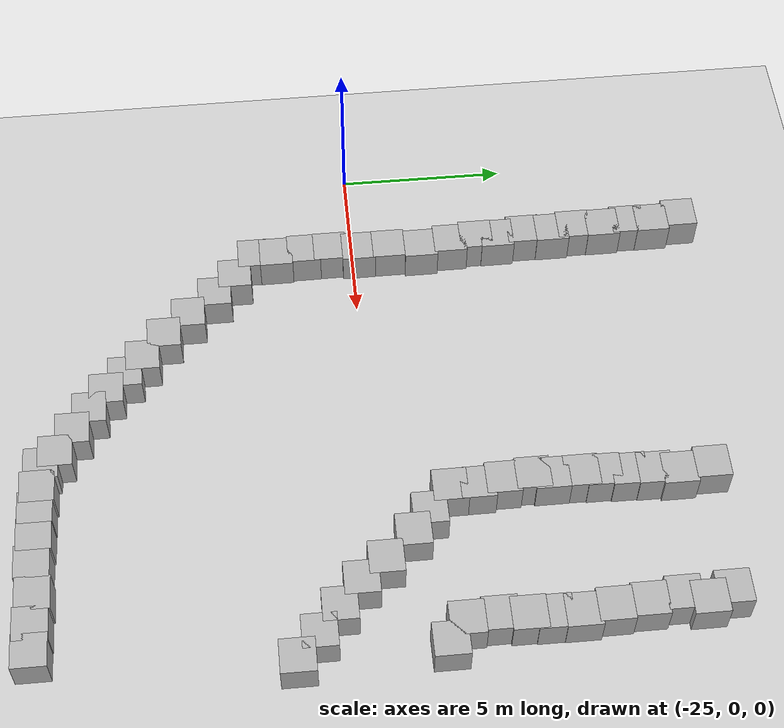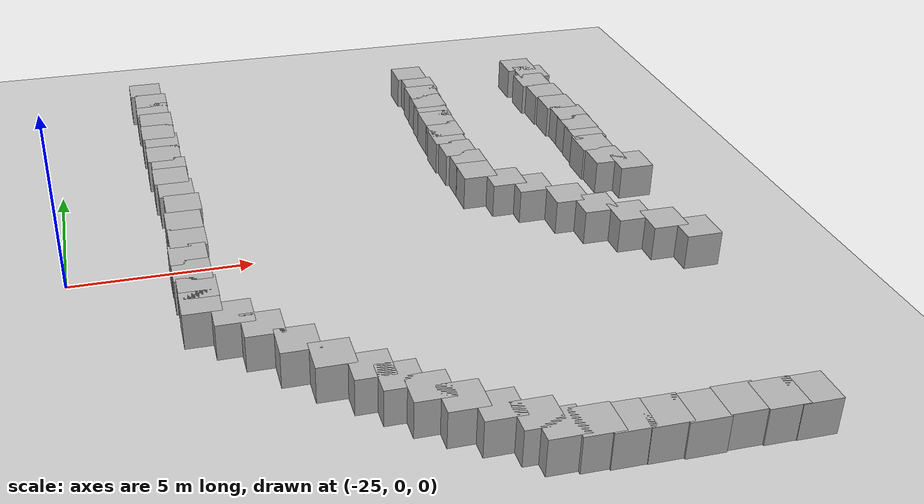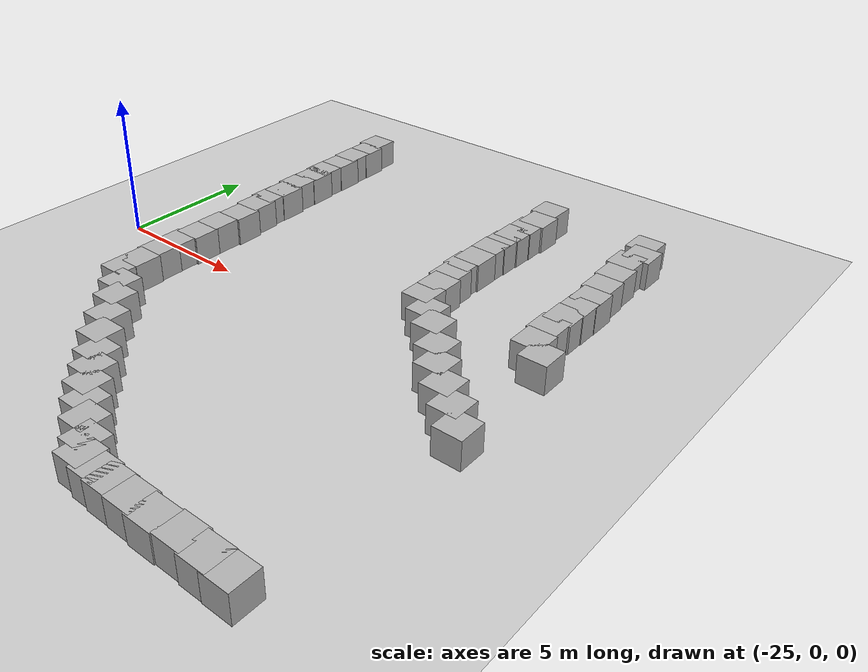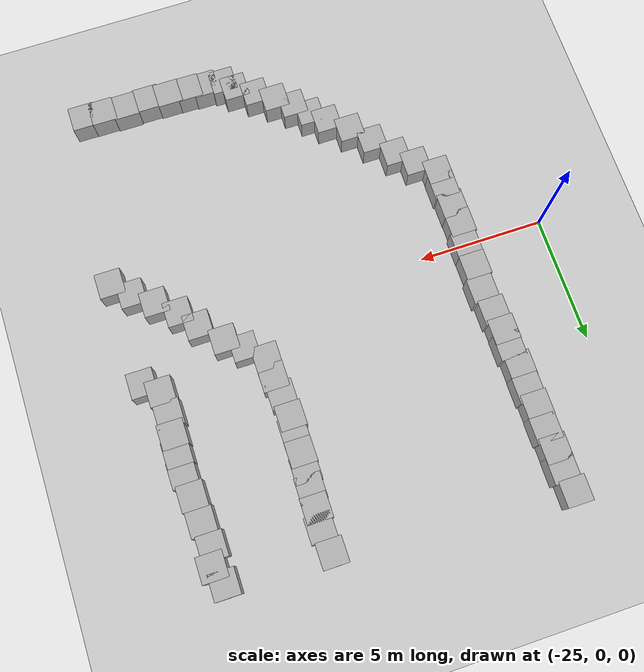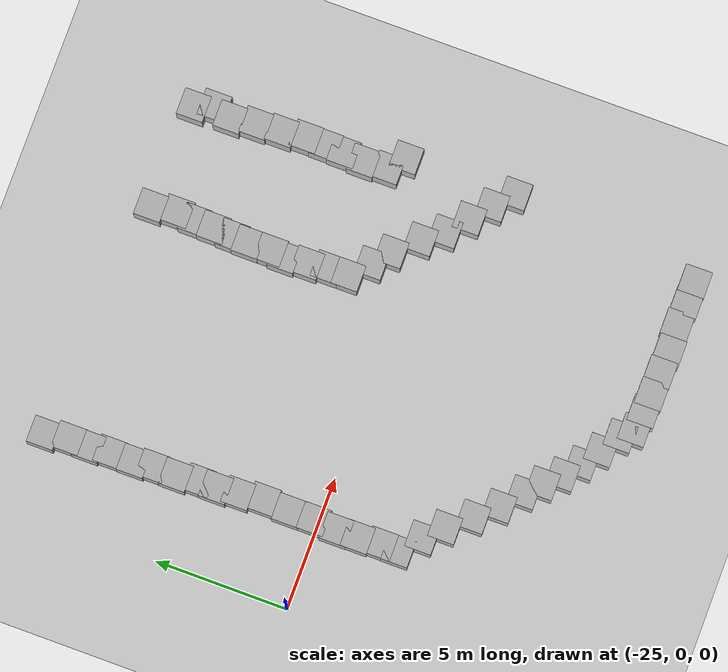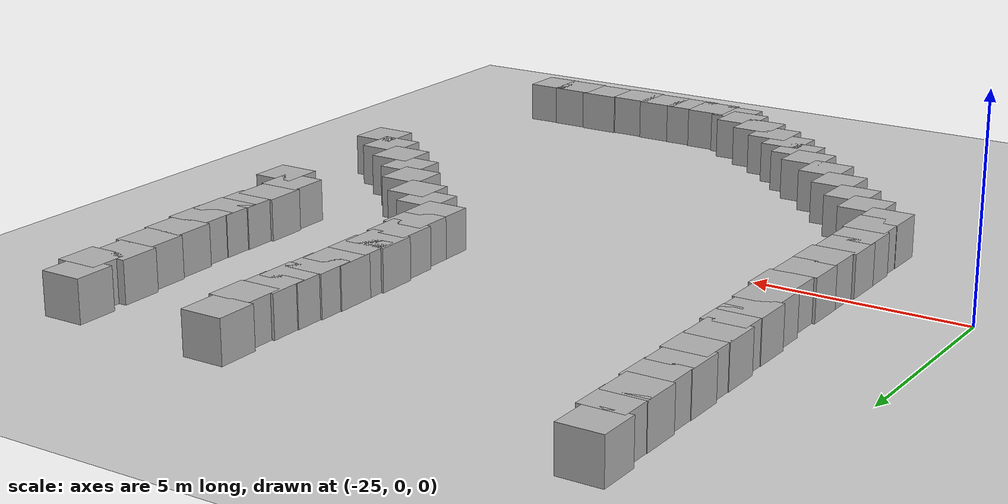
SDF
<sdf version="1.10">
 <world name="empty">
  <model name="ground_plane">
   <static>true</static>
   <link name="link">
    <collision name="collision">
     <geometry><plane><normal>0 0 1</normal><size>100 100</size></plane></geometry>
    </collision>
    <visual name="visual">
     <geometry><plane><normal>0 0 1</normal><size>100 100</size></plane></geometry>
     <material>
      <ambient>0.800000012 0.800000012 0.800000012 1</ambient>
      <diffuse>0.800000012 0.800000012 0.800000012 1</diffuse>
      <specular>0.800000012 0.800000012 0.800000012 1</specular>
     </material>
    </visual>
    <inertial>
     <mass>1</mass>
     <inertia><ixx>1</ixx><ixy>0</ixy><ixz>0</ixz><iyy>1</iyy><iyz>0</iyz><izz>1</izz></inertia>
    </inertial>
   </link>
  </model>
  <model name="box_16">
   <pose>-8.3134256486186651 1.5560085388121672 0.5 0 0 0</pose>
   <link name="box_link">
    <inertial>
     <inertia><ixx>0.16666</ixx><ixy>0</ixy><ixz>0</ixz><iyy>0.16666</iyy><iyz>0</iyz><izz>0.16666</izz></inertia>
     <mass>1</mass>
    </inertial>
    <collision name="box_collision"><geometry><box><size>1 1 1</size></box></geometry></collision>
    <visual name="box_visual">
     <geometry><box><size>1 1 1</size></box></geometry>
     <material>
      <ambient>0.300000012 0.300000012 0.300000012 1</ambient>
      <diffuse>0.699999988 0.699999988 0.699999988 1</diffuse>
      <specular>1 1 1 1</specular>
     </material>
    </visual>
   </link>
   <static>false</static>
  </model>
  <model name="box_17">
   <pose>-8.8900060211585394 2.0571078484096716 0.5 0 0 0</pose>
   <link name="box_link">
    <inertial>
     <inertia><ixx>0.16666</ixx><ixy>0</ixy><ixz>0</ixz><iyy>0.16666</iyy><iyz>0</iyz><izz>0.16666</izz></inertia>
     <mass>1</mass>
    </inertial>
    <collision name="box_collision"><geometry><box><size>1 1 1</size></box></geometry></collision>
    <visual name="box_visual">
     <geometry><box><size>1 1 1</size></box></geometry>
     <material>
      <ambient>0.300000012 0.300000012 0.300000012 1</ambient>
      <diffuse>0.699999988 0.699999988 0.699999988 1</diffuse>
      <specular>1 1 1 1</specular>
     </material>
    </visual>
   </link>
   <static>false</static>
  </model>
  <model name="box_18">
   <pose>-8.9467301686917917 2.964929724458182 0.5 0 0 0</pose>
   <link name="box_link">
    <inertial>
     <inertia><ixx>0.16666</ixx><ixy>0</ixy><ixz>0</ixz><iyy>0.16666</iyy><iyz>0</iyz><izz>0.16666</izz></inertia>
     <mass>1</mass>
    </inertial>
    <collision name="box_collision"><geometry><box><size>1 1 1</size></box></geometry></collision>
    <visual name="box_visual">
     <geometry><box><size>1 1 1</size></box></geometry>
     <material>
      <ambient>0.300000012 0.300000012 0.300000012 1</ambient>
      <diffuse>0.699999988 0.699999988 0.699999988 1</diffuse>
      <specular>1 1 1 1</specular>
     </material>
    </visual>
   </link>
   <static>false</static>
  </model>
  <model name="box_7_19">
   <pose>-8.8825054762130602 3.7403488629637112 0.5 0 0 0</pose>
   <link name="box_link">
    <inertial>
     <inertia><ixx>0.16666</ixx><ixy>0</ixy><ixz>0</ixz><iyy>0.16666</iyy><iyz>0</iyz><izz>0.16666</izz></inertia>
     <mass>1</mass>
    </inertial>
    <collision name="box_collision"><geometry><box><size>1 1 1</size></box></geometry></collision>
    <visual name="box_visual">
     <geometry><box><size>1 1 1</size></box></geometry>
     <material>
      <ambient>0.300000012 0.300000012 0.300000012 1</ambient>
      <diffuse>0.699999988 0.699999988 0.699999988 1</diffuse>
      <specular>1 1 1 1</specular>
     </material>
    </visual>
   </link>
   <static>false</static>
  </model>
  <model name="box_7_20">
   <pose>-8.8563270385400727 4.4408290193656885 0.5 0 0 0</pose>
   <link name="box_link">
    <inertial>
     <inertia><ixx>0.16666</ixx><ixy>0</ixy><ixz>0</ixz><iyy>0.16666</iyy><iyz>0</iyz><izz>0.16666</izz></inertia>
     <mass>1</mass>
    </inertial>
    <collision name="box_collision"><geometry><box><size>1 1 1</size></box></geometry></collision>
    <visual name="box_visual">
     <geometry><box><size>1 1 1</size></box></geometry>
     <material>
      <ambient>0.300000012 0.300000012 0.300000012 1</ambient>
      <diffuse>0.699999988 0.699999988 0.699999988 1</diffuse>
      <specular>1 1 1 1</specular>
     </material>
    </visual>
   </link>
   <static>false</static>
  </model>
  <model name="box_7_21">
   <pose>-8.8393992152168064 5.2070650359532245 0.5 0 0 0</pose>
   <link name="box_link">
    <inertial>
     <inertia><ixx>0.16666</ixx><ixy>0</ixy><ixz>0</ixz><iyy>0.16666</iyy><iyz>0</iyz><izz>0.16666</izz></inertia>
     <mass>1</mass>
    </inertial>
    <collision name="box_collision"><geometry><box><size>1 1 1</size></box></geometry></collision>
    <visual name="box_visual">
     <geometry><box><size>1 1 1</size></box></geometry>
     <material>
      <ambient>0.300000012 0.300000012 0.300000012 1</ambient>
      <diffuse>0.699999988 0.699999988 0.699999988 1</diffuse>
      <specular>1 1 1 1</specular>
     </material>
    </visual>
   </link>
   <static>false</static>
  </model>
  <model name="box_7_22">
   <pose>-8.932839504218979 6.1035044342097242 0.5 0 0 0</pose>
   <link name="box_link">
    <inertial>
     <inertia><ixx>0.16666</ixx><ixy>0</ixy><ixz>0</ixz><iyy>0.16666</iyy><iyz>0</iyz><izz>0.16666</izz></inertia>
     <mass>1</mass>
    </inertial>
    <collision name="box_collision"><geometry><box><size>1 1 1</size></box></geometry></collision>
    <visual name="box_visual">
     <geometry><box><size>1 1 1</size></box></geometry>
     <material>
      <ambient>0.300000012 0.300000012 0.300000012 1</ambient>
      <diffuse>0.699999988 0.699999988 0.699999988 1</diffuse>
      <specular>1 1 1 1</specular>
     </material>
    </visual>
   </link>
   <static>false</static>
  </model>
  <model name="box_7_23">
   <pose>-8.9926402649746571 7.0630940961673137 0.5 0 0 0</pose>
   <link name="box_link">
    <inertial>
     <inertia><ixx>0.16666</ixx><ixy>0</ixy><ixz>0</ixz><iyy>0.16666</iyy><iyz>0</iyz><izz>0.16666</izz></inertia>
     <mass>1</mass>
    </inertial>
    <collision name="box_collision"><geometry><box><size>1 1 1</size></box></geometry></collision>
    <visual name="box_visual">
     <geometry><box><size>1 1 1</size></box></geometry>
     <material>
      <ambient>0.300000012 0.300000012 0.300000012 1</ambient>
      <diffuse>0.699999988 0.699999988 0.699999988 1</diffuse>
      <specular>1 1 1 1</specular>
     </material>
    </visual>
   </link>
   <static>false</static>
  </model>
  <model name="box_7_26">
   <pose>-9.106959125132132 8.0164691209362555 0.5 0 0 0</pose>
   <link name="box_link">
    <inertial>
     <inertia><ixx>0.16666</ixx><ixy>0</ixy><ixz>0</ixz><iyy>0.16666</iyy><iyz>0</iyz><izz>0.16666</izz></inertia>
     <mass>1</mass>
    </inertial>
    <collision name="box_collision"><geometry><box><size>1 1 1</size></box></geometry></collision>
    <visual name="box_visual">
     <geometry><box><size>1 1 1</size></box></geometry>
     <material>
      <ambient>0.300000012 0.300000012 0.300000012 1</ambient>
      <diffuse>0.699999988 0.699999988 0.699999988 1</diffuse>
      <specular>1 1 1 1</specular>
     </material>
    </visual>
   </link>
   <static>false</static>
  </model>
  <model name="box_7_27">
   <pose>-8.912000781065343 8.6936923679451574 0.5 0 0 0</pose>
   <link name="box_link">
    <inertial>
     <inertia><ixx>0.16666</ixx><ixy>0</ixy><ixz>0</ixz><iyy>0.16666</iyy><iyz>0</iyz><izz>0.16666</izz></inertia>
     <mass>1</mass>
    </inertial>
    <collision name="box_collision"><geometry><box><size>1 1 1</size></box></geometry></collision>
    <visual name="box_visual">
     <geometry><box><size>1 1 1</size></box></geometry>
     <material>
      <ambient>0.300000012 0.300000012 0.300000012 1</ambient>
      <diffuse>0.699999988 0.699999988 0.699999988 1</diffuse>
      <specular>1 1 1 1</specular>
     </material>
    </visual>
   </link>
   <static>false</static>
  </model>
  <model name="box_7_29">
   <pose>-9.1515302463998545 9.3971093742483625 0.5 0 0 0</pose>
   <link name="box_link">
    <inertial>
     <inertia><ixx>0.16666</ixx><ixy>0</ixy><ixz>0</ixz><iyy>0.16666</iyy><iyz>0</iyz><izz>0.16666</izz></inertia>
     <mass>1</mass>
    </inertial>
    <collision name="box_collision"><geometry><box><size>1 1 1</size></box></geometry></collision>
    <visual name="box_visual">
     <geometry><box><size>1 1 1</size></box></geometry>
     <material>
      <ambient>0.300000012 0.300000012 0.300000012 1</ambient>
      <diffuse>0.699999988 0.699999988 0.699999988 1</diffuse>
      <specular>1 1 1 1</specular>
     </material>
    </visual>
   </link>
   <static>false</static>
  </model>
  <model name="box_7_202">
   <pose>-13.096854440138452 9.5701432966098778 0.5 0 0 0</pose>
   <link name="box_link">
    <inertial>
     <inertia><ixx>0.16666</ixx><ixy>0</ixy><ixz>0</ixz><iyy>0.16666</iyy><iyz>0</iyz><izz>0.16666</izz></inertia>
     <mass>1</mass>
    </inertial>
    <collision name="box_collision"><geometry><box><size>1 1 1</size></box></geometry></collision>
    <visual name="box_visual">
     <geometry><box><size>1 1 1</size></box></geometry>
     <material>
      <ambient>0.300000012 0.300000012 0.300000012 1</ambient>
      <diffuse>0.699999988 0.699999988 0.699999988 1</diffuse>
      <specular>1 1 1 1</specular>
     </material>
    </visual>
   </link>
   <static>false</static>
  </model>
  <model name="box_7_203">
   <pose>-12.9802568238142 8.6102055473661547 0.5 0 0 0</pose>
   <link name="box_link">
    <inertial>
     <inertia><ixx>0.16666</ixx><ixy>0</ixy><ixz>0</ixz><iyy>0.16666</iyy><iyz>0</iyz><izz>0.16666</izz></inertia>
     <mass>1</mass>
    </inertial>
    <collision name="box_collision"><geometry><box><size>1 1 1</size></box></geometry></collision>
    <visual name="box_visual">
     <geometry><box><size>1 1 1</size></box></geometry>
     <material>
      <ambient>0.300000012 0.300000012 0.300000012 1</ambient>
      <diffuse>0.699999988 0.699999988 0.699999988 1</diffuse>
      <specular>1 1 1 1</specular>
     </material>
    </visual>
   </link>
   <static>false</static>
  </model>
  <model name="box_7_204">
   <pose>-13.049491743712103 7.9129410383814403 0.5 0 0 0</pose>
   <link name="box_link">
    <inertial>
     <inertia><ixx>0.16666</ixx><ixy>0</ixy><ixz>0</ixz><iyy>0.16666</iyy><iyz>0</iyz><izz>0.16666</izz></inertia>
     <mass>1</mass>
    </inertial>
    <collision name="box_collision"><geometry><box><size>1 1 1</size></box></geometry></collision>
    <visual name="box_visual">
     <geometry><box><size>1 1 1</size></box></geometry>
     <material>
      <ambient>0.300000012 0.300000012 0.300000012 1</ambient>
      <diffuse>0.699999988 0.699999988 0.699999988 1</diffuse>
      <specular>1 1 1 1</specular>
     </material>
    </visual>
   </link>
   <static>false</static>
  </model>
  <model name="box_7_205">
   <pose>-13.074853710158791 7.1771923825665613 0.5 0 0 0</pose>
   <link name="box_link">
    <inertial>
     <inertia><ixx>0.16666</ixx><ixy>0</ixy><ixz>0</ixz><iyy>0.16666</iyy><iyz>0</iyz><izz>0.16666</izz></inertia>
     <mass>1</mass>
    </inertial>
    <collision name="box_collision"><geometry><box><size>1 1 1</size></box></geometry></collision>
    <visual name="box_visual">
     <geometry><box><size>1 1 1</size></box></geometry>
     <material>
      <ambient>0.300000012 0.300000012 0.300000012 1</ambient>
      <diffuse>0.699999988 0.699999988 0.699999988 1</diffuse>
      <specular>1 1 1 1</specular>
     </material>
    </visual>
   </link>
   <static>false</static>
  </model>
  <model name="box_7_206">
   <pose>-13.113831419450625 6.4563846742366788 0.5 0 0 0</pose>
   <link name="box_link">
    <inertial>
     <inertia><ixx>0.16666</ixx><ixy>0</ixy><ixz>0</ixz><iyy>0.16666</iyy><iyz>0</iyz><izz>0.16666</izz></inertia>
     <mass>1</mass>
    </inertial>
    <collision name="box_collision"><geometry><box><size>1 1 1</size></box></geometry></collision>
    <visual name="box_visual">
     <geometry><box><size>1 1 1</size></box></geometry>
     <material>
      <ambient>0.300000012 0.300000012 0.300000012 1</ambient>
      <diffuse>0.699999988 0.699999988 0.699999988 1</diffuse>
      <specular>1 1 1 1</specular>
     </material>
    </visual>
   </link>
   <static>false</static>
  </model>
  <model name="box_7_207">
   <pose>-13.142169233798182 5.8273747518087191 0.5 0 0 0</pose>
   <link name="box_link">
    <inertial>
     <inertia><ixx>0.16666</ixx><ixy>0</ixy><ixz>0</ixz><iyy>0.16666</iyy><iyz>0</iyz><izz>0.16666</izz></inertia>
     <mass>1</mass>
    </inertial>
    <collision name="box_collision"><geometry><box><size>1 1 1</size></box></geometry></collision>
    <visual name="box_visual">
     <geometry><box><size>1 1 1</size></box></geometry>
     <material>
      <ambient>0.300000012 0.300000012 0.300000012 1</ambient>
      <diffuse>0.699999988 0.699999988 0.699999988 1</diffuse>
      <specular>1 1 1 1</specular>
     </material>
    </visual>
   </link>
   <static>false</static>
  </model>
  <model name="box_7_208">
   <pose>-13.138292195322535 4.9729508419573136 0.5 0 0 0</pose>
   <link name="box_link">
    <inertial>
     <inertia><ixx>0.16666</ixx><ixy>0</ixy><ixz>0</ixz><iyy>0.16666</iyy><iyz>0</iyz><izz>0.16666</izz></inertia>
     <mass>1</mass>
    </inertial>
    <collision name="box_collision"><geometry><box><size>1 1 1</size></box></geometry></collision>
    <visual name="box_visual">
     <geometry><box><size>1 1 1</size></box></geometry>
     <material>
      <ambient>0.300000012 0.300000012 0.300000012 1</ambient>
      <diffuse>0.699999988 0.699999988 0.699999988 1</diffuse>
      <specular>1 1 1 1</specular>
     </material>
    </visual>
   </link>
   <static>false</static>
  </model>
  <model name="box_7_219">
   <pose>-22.118391395980105 10.289839189990333 0.5 0 0 0</pose>
   <link name="box_link">
    <inertial>
     <inertia><ixx>0.16666</ixx><ixy>0</ixy><ixz>0</ixz><iyy>0.16666</iyy><iyz>0</iyz><izz>0.16666</izz></inertia>
     <mass>1</mass>
    </inertial>
    <collision name="box_collision"><geometry><box><size>1 1 1</size></box></geometry></collision>
    <visual name="box_visual">
     <geometry><box><size>1 1 1</size></box></geometry>
     <material>
      <ambient>0.300000012 0.300000012 0.300000012 1</ambient>
      <diffuse>0.699999988 0.699999988 0.699999988 1</diffuse>
      <specular>1 1 1 1</specular>
     </material>
    </visual>
   </link>
   <static>false</static>
  </model>
  <model name="box_7_220">
   <pose>-21.991191246889102 9.3901107747503669 0.5 0 0 0</pose>
   <link name="box_link">
    <inertial>
     <inertia><ixx>0.16666</ixx><ixy>0</ixy><ixz>0</ixz><iyy>0.16666</iyy><iyz>0</iyz><izz>0.16666</izz></inertia>
     <mass>1</mass>
    </inertial>
    <collision name="box_collision"><geometry><box><size>1 1 1</size></box></geometry></collision>
    <visual name="box_visual">
     <geometry><box><size>1 1 1</size></box></geometry>
     <material>
      <ambient>0.300000012 0.300000012 0.300000012 1</ambient>
      <diffuse>0.699999988 0.699999988 0.699999988 1</diffuse>
      <specular>1 1 1 1</specular>
     </material>
    </visual>
   </link>
   <static>false</static>
  </model>
  <model name="box_7_221">
   <pose>-22.003370256324281 8.6326823532810995 0.5 0 0 0</pose>
   <link name="box_link">
    <inertial>
     <inertia><ixx>0.16666</ixx><ixy>0</ixy><ixz>0</ixz><iyy>0.16666</iyy><iyz>0</iyz><izz>0.16666</izz></inertia>
     <mass>1</mass>
    </inertial>
    <collision name="box_collision"><geometry><box><size>1 1 1</size></box></geometry></collision>
    <visual name="box_visual">
     <geometry><box><size>1 1 1</size></box></geometry>
     <material>
      <ambient>0.300000012 0.300000012 0.300000012 1</ambient>
      <diffuse>0.699999988 0.699999988 0.699999988 1</diffuse>
      <specular>1 1 1 1</specular>
     </material>
    </visual>
   </link>
   <static>false</static>
  </model>
  <model name="box_7_222">
   <pose>-21.945559925820866 7.8334892074385749 0.5 0 0 0</pose>
   <link name="box_link">
    <inertial>
     <inertia><ixx>0.16666</ixx><ixy>0</ixy><ixz>0</ixz><iyy>0.16666</iyy><iyz>0</iyz><izz>0.16666</izz></inertia>
     <mass>1</mass>
    </inertial>
    <collision name="box_collision"><geometry><box><size>1 1 1</size></box></geometry></collision>
    <visual name="box_visual">
     <geometry><box><size>1 1 1</size></box></geometry>
     <material>
      <ambient>0.300000012 0.300000012 0.300000012 1</ambient>
      <diffuse>0.699999988 0.699999988 0.699999988 1</diffuse>
      <specular>1 1 1 1</specular>
     </material>
    </visual>
   </link>
   <static>false</static>
  </model>
  <model name="box_7_223">
   <pose>-21.960101350608081 6.9243768868488269 0.5 0 0 0</pose>
   <link name="box_link">
    <inertial>
     <inertia><ixx>0.16666</ixx><ixy>0</ixy><ixz>0</ixz><iyy>0.16666</iyy><iyz>0</iyz><izz>0.16666</izz></inertia>
     <mass>1</mass>
    </inertial>
    <collision name="box_collision"><geometry><box><size>1 1 1</size></box></geometry></collision>
    <visual name="box_visual">
     <geometry><box><size>1 1 1</size></box></geometry>
     <material>
      <ambient>0.300000012 0.300000012 0.300000012 1</ambient>
      <diffuse>0.699999988 0.699999988 0.699999988 1</diffuse>
      <specular>1 1 1 1</specular>
     </material>
    </visual>
   </link>
   <static>false</static>
  </model>
  <model name="box_7_224">
   <pose>-21.897034162254805 6.2277115350880221 0.5 0 0 0</pose>
   <link name="box_link">
    <inertial>
     <inertia><ixx>0.16666</ixx><ixy>0</ixy><ixz>0</ixz><iyy>0.16666</iyy><iyz>0</iyz><izz>0.16666</izz></inertia>
     <mass>1</mass>
    </inertial>
    <collision name="box_collision"><geometry><box><size>1 1 1</size></box></geometry></collision>
    <visual name="box_visual">
     <geometry><box><size>1 1 1</size></box></geometry>
     <material>
      <ambient>0.300000012 0.300000012 0.300000012 1</ambient>
      <diffuse>0.699999988 0.699999988 0.699999988 1</diffuse>
      <specular>1 1 1 1</specular>
     </material>
    </visual>
   </link>
   <static>false</static>
  </model>
  <model name="box_7_225">
   <pose>-21.911638899944613 5.3474572890023859 0.5 0 0 0</pose>
   <link name="box_link">
    <inertial>
     <inertia><ixx>0.16666</ixx><ixy>0</ixy><ixz>0</ixz><iyy>0.16666</iyy><iyz>0</iyz><izz>0.16666</izz></inertia>
     <mass>1</mass>
    </inertial>
    <collision name="box_collision"><geometry><box><size>1 1 1</size></box></geometry></collision>
    <visual name="box_visual">
     <geometry><box><size>1 1 1</size></box></geometry>
     <material>
      <ambient>0.300000012 0.300000012 0.300000012 1</ambient>
      <diffuse>0.699999988 0.699999988 0.699999988 1</diffuse>
      <specular>1 1 1 1</specular>
     </material>
    </visual>
   </link>
   <static>false</static>
  </model>
  <model name="box_7_226">
   <pose>-21.816645307327043 4.4994064581886617 0.5 0 0 0</pose>
   <link name="box_link">
    <inertial>
     <inertia><ixx>0.16666</ixx><ixy>0</ixy><ixz>0</ixz><iyy>0.16666</iyy><iyz>0</iyz><izz>0.16666</izz></inertia>
     <mass>1</mass>
    </inertial>
    <collision name="box_collision"><geometry><box><size>1 1 1</size></box></geometry></collision>
    <visual name="box_visual">
     <geometry><box><size>1 1 1</size></box></geometry>
     <material>
      <ambient>0.300000012 0.300000012 0.300000012 1</ambient>
      <diffuse>0.699999988 0.699999988 0.699999988 1</diffuse>
      <specular>1 1 1 1</specular>
     </material>
    </visual>
   </link>
   <static>false</static>
  </model>
  <model name="box_7_227">
   <pose>-13.194255192085059 4.4389063438775631 0.5 0 0 0</pose>
   <link name="box_link">
    <inertial>
     <inertia><ixx>0.16666</ixx><ixy>0</ixy><ixz>0</ixz><iyy>0.16666</iyy><iyz>0</iyz><izz>0.16666</izz></inertia>
     <mass>1</mass>
    </inertial>
    <collision name="box_collision"><geometry><box><size>1 1 1</size></box></geometry></collision>
    <visual name="box_visual">
     <geometry><box><size>1 1 1</size></box></geometry>
     <material>
      <ambient>0.300000012 0.300000012 0.300000012 1</ambient>
      <diffuse>0.699999988 0.699999988 0.699999988 1</diffuse>
      <specular>1 1 1 1</specular>
     </material>
    </visual>
   </link>
   <static>false</static>
  </model>
  <model name="box_7_228">
   <pose>-21.83399626350861 3.8467736791727729 0.5 0 0 0</pose>
   <link name="box_link">
    <inertial>
     <inertia><ixx>0.16666</ixx><ixy>0</ixy><ixz>0</ixz><iyy>0.16666</iyy><iyz>0</iyz><izz>0.16666</izz></inertia>
     <mass>1</mass>
    </inertial>
    <collision name="box_collision"><geometry><box><size>1 1 1</size></box></geometry></collision>
    <visual name="box_visual">
     <geometry><box><size>1 1 1</size></box></geometry>
     <material>
      <ambient>0.300000012 0.300000012 0.300000012 1</ambient>
      <diffuse>0.699999988 0.699999988 0.699999988 1</diffuse>
      <specular>1 1 1 1</specular>
     </material>
    </visual>
   </link>
   <static>false</static>
  </model>
  <model name="box_7_229">
   <pose>-21.757834766641999 3.0284820923420344 0.5 0 0 0</pose>
   <link name="box_link">
    <inertial>
     <inertia><ixx>0.16666</ixx><ixy>0</ixy><ixz>0</ixz><iyy>0.16666</iyy><iyz>0</iyz><izz>0.16666</izz></inertia>
     <mass>1</mass>
    </inertial>
    <collision name="box_collision"><geometry><box><size>1 1 1</size></box></geometry></collision>
    <visual name="box_visual">
     <geometry><box><size>1 1 1</size></box></geometry>
     <material>
      <ambient>0.300000012 0.300000012 0.300000012 1</ambient>
      <diffuse>0.699999988 0.699999988 0.699999988 1</diffuse>
      <specular>1 1 1 1</specular>
     </material>
    </visual>
   </link>
   <static>false</static>
  </model>
  <model name="box_7_230">
   <pose>-21.648901676325654 2.1029743366995719 0.5 0 0 0</pose>
   <link name="box_link">
    <inertial>
     <inertia><ixx>0.16666</ixx><ixy>0</ixy><ixz>0</ixz><iyy>0.16666</iyy><iyz>0</iyz><izz>0.16666</izz></inertia>
     <mass>1</mass>
    </inertial>
    <collision name="box_collision"><geometry><box><size>1 1 1</size></box></geometry></collision>
    <visual name="box_visual">
     <geometry><box><size>1 1 1</size></box></geometry>
     <material>
      <ambient>0.300000012 0.300000012 0.300000012 1</ambient>
      <diffuse>0.699999988 0.699999988 0.699999988 1</diffuse>
      <specular>1 1 1 1</specular>
     </material>
    </visual>
   </link>
   <static>false</static>
  </model>
  <model name="box_7_231">
   <pose>-21.715674589583259 1.11646411473596 0.5 0 0 0</pose>
   <link name="box_link">
    <inertial>
     <inertia><ixx>0.16666</ixx><ixy>0</ixy><ixz>0</ixz><iyy>0.16666</iyy><iyz>0</iyz><izz>0.16666</izz></inertia>
     <mass>1</mass>
    </inertial>
    <collision name="box_collision"><geometry><box><size>1 1 1</size></box></geometry></collision>
    <visual name="box_visual">
     <geometry><box><size>1 1 1</size></box></geometry>
     <material>
      <ambient>0.300000012 0.300000012 0.300000012 1</ambient>
      <diffuse>0.699999988 0.699999988 0.699999988 1</diffuse>
      <specular>1 1 1 1</specular>
     </material>
    </visual>
   </link>
   <static>false</static>
  </model>
  <model name="box_7_232">
   <pose>-21.708408807597809 0.17318664717064158 0.5 0 0 0</pose>
   <link name="box_link">
    <inertial>
     <inertia><ixx>0.16666</ixx><ixy>0</ixy><ixz>0</ixz><iyy>0.16666</iyy><iyz>0</iyz><izz>0.16666</izz></inertia>
     <mass>1</mass>
    </inertial>
    <collision name="box_collision"><geometry><box><size>1 1 1</size></box></geometry></collision>
    <visual name="box_visual">
     <geometry><box><size>1 1 1</size></box></geometry>
     <material>
      <ambient>0.300000012 0.300000012 0.300000012 1</ambient>
      <diffuse>0.699999988 0.699999988 0.699999988 1</diffuse>
      <specular>1 1 1 1</specular>
     </material>
    </visual>
   </link>
   <static>false</static>
  </model>
  <model name="box_7_233">
   <pose>-21.775735461694659 -0.70370204135245995 0.5 0 0 0</pose>
   <link name="box_link">
    <inertial>
     <inertia><ixx>0.16666</ixx><ixy>0</ixy><ixz>0</ixz><iyy>0.16666</iyy><iyz>0</iyz><izz>0.16666</izz></inertia>
     <mass>1</mass>
    </inertial>
    <collision name="box_collision"><geometry><box><size>1 1 1</size></box></geometry></collision>
    <visual name="box_visual">
     <geometry><box><size>1 1 1</size></box></geometry>
     <material>
      <ambient>0.300000012 0.300000012 0.300000012 1</ambient>
      <diffuse>0.699999988 0.699999988 0.699999988 1</diffuse>
      <specular>1 1 1 1</specular>
     </material>
    </visual>
   </link>
   <static>false</static>
  </model>
  <model name="box_7_234">
   <pose>-21.764915220794713 -1.5106156404169511 0.5 0 0 0</pose>
   <link name="box_link">
    <inertial>
     <inertia><ixx>0.16666</ixx><ixy>0</ixy><ixz>0</ixz><iyy>0.16666</iyy><iyz>0</iyz><izz>0.16666</izz></inertia>
     <mass>1</mass>
    </inertial>
    <collision name="box_collision"><geometry><box><size>1 1 1</size></box></geometry></collision>
    <visual name="box_visual">
     <geometry><box><size>1 1 1</size></box></geometry>
     <material>
      <ambient>0.300000012 0.300000012 0.300000012 1</ambient>
      <diffuse>0.699999988 0.699999988 0.699999988 1</diffuse>
      <specular>1 1 1 1</specular>
     </material>
    </visual>
   </link>
   <static>false</static>
  </model>
  <model name="box_7_235">
   <pose>-21.708682051745178 -2.369548889360078 0.5 0 0 0</pose>
   <link name="box_link">
    <inertial>
     <inertia><ixx>0.16666</ixx><ixy>0</ixy><ixz>0</ixz><iyy>0.16666</iyy><iyz>0</iyz><izz>0.16666</izz></inertia>
     <mass>1</mass>
    </inertial>
    <collision name="box_collision"><geometry><box><size>1 1 1</size></box></geometry></collision>
    <visual name="box_visual">
     <geometry><box><size>1 1 1</size></box></geometry>
     <material>
      <ambient>0.300000012 0.300000012 0.300000012 1</ambient>
      <diffuse>0.699999988 0.699999988 0.699999988 1</diffuse>
      <specular>1 1 1 1</specular>
     </material>
    </visual>
   </link>
   <static>false</static>
  </model>
  <model name="box_7_236">
   <pose>-21.718436777098759 -3.0368071516663013 0.5 0 0 0</pose>
   <link name="box_link">
    <inertial>
     <inertia><ixx>0.16666</ixx><ixy>0</ixy><ixz>0</ixz><iyy>0.16666</iyy><iyz>0</iyz><izz>0.16666</izz></inertia>
     <mass>1</mass>
    </inertial>
    <collision name="box_collision"><geometry><box><size>1 1 1</size></box></geometry></collision>
    <visual name="box_visual">
     <geometry><box><size>1 1 1</size></box></geometry>
     <material>
      <ambient>0.300000012 0.300000012 0.300000012 1</ambient>
      <diffuse>0.699999988 0.699999988 0.699999988 1</diffuse>
      <specular>1 1 1 1</specular>
     </material>
    </visual>
   </link>
   <static>false</static>
  </model>
  <model name="box_7_237">
   <pose>-13.124532929730378 3.579449693910179 0.5 0 0 0</pose>
   <link name="box_link">
    <inertial>
     <inertia><ixx>0.16666</ixx><ixy>0</ixy><ixz>0</ixz><iyy>0.16666</iyy><iyz>0</iyz><izz>0.16666</izz></inertia>
     <mass>1</mass>
    </inertial>
    <collision name="box_collision"><geometry><box><size>1 1 1</size></box></geometry></collision>
    <visual name="box_visual">
     <geometry><box><size>1 1 1</size></box></geometry>
     <material>
      <ambient>0.300000012 0.300000012 0.300000012 1</ambient>
      <diffuse>0.699999988 0.699999988 0.699999988 1</diffuse>
      <specular>1 1 1 1</specular>
     </material>
    </visual>
   </link>
   <static>false</static>
  </model>
  <model name="box_7_238">
   <pose>-13.025346901286447 2.8420645162948377 0.5 0 0 0</pose>
   <link name="box_link">
    <inertial>
     <inertia><ixx>0.16666</ixx><ixy>0</ixy><ixz>0</ixz><iyy>0.16666</iyy><iyz>0</iyz><izz>0.16666</izz></inertia>
     <mass>1</mass>
    </inertial>
    <collision name="box_collision"><geometry><box><size>1 1 1</size></box></geometry></collision>
    <visual name="box_visual">
     <geometry><box><size>1 1 1</size></box></geometry>
     <material>
      <ambient>0.300000012 0.300000012 0.300000012 1</ambient>
      <diffuse>0.699999988 0.699999988 0.699999988 1</diffuse>
      <specular>1 1 1 1</specular>
     </material>
    </visual>
   </link>
   <static>false</static>
  </model>
  <model name="box_7_239">
   <pose>-13.020537063735853 2.0520910021985901 0.5 0 0 0</pose>
   <link name="box_link">
    <inertial>
     <inertia><ixx>0.16666</ixx><ixy>0</ixy><ixz>0</ixz><iyy>0.16666</iyy><iyz>0</iyz><izz>0.16666</izz></inertia>
     <mass>1</mass>
    </inertial>
    <collision name="box_collision"><geometry><box><size>1 1 1</size></box></geometry></collision>
    <visual name="box_visual">
     <geometry><box><size>1 1 1</size></box></geometry>
     <material>
      <ambient>0.300000012 0.300000012 0.300000012 1</ambient>
      <diffuse>0.699999988 0.699999988 0.699999988 1</diffuse>
      <specular>1 1 1 1</specular>
     </material>
    </visual>
   </link>
   <static>false</static>
  </model>
  <model name="box_7_240">
   <pose>-12.337364597434544 1.4105076298185482 0.5 0 0 0</pose>
   <link name="box_link">
    <inertial>
     <inertia><ixx>0.16666</ixx><ixy>0</ixy><ixz>0</ixz><iyy>0.16666</iyy><iyz>0</iyz><izz>0.16666</izz></inertia>
     <mass>1</mass>
    </inertial>
    <collision name="box_collision"><geometry><box><size>1 1 1</size></box></geometry></collision>
    <visual name="box_visual">
     <geometry><box><size>1 1 1</size></box></geometry>
     <material>
      <ambient>0.300000012 0.300000012 0.300000012 1</ambient>
      <diffuse>0.699999988 0.699999988 0.699999988 1</diffuse>
      <specular>1 1 1 1</specular>
     </material>
    </visual>
   </link>
   <static>false</static>
  </model>
  <model name="box_7_241">
   <pose>-11.703515765190266 0.88632098967411543 0.5 0 0 0</pose>
   <link name="box_link">
    <inertial>
     <inertia><ixx>0.16666</ixx><ixy>0</ixy><ixz>0</ixz><iyy>0.16666</iyy><iyz>0</iyz><izz>0.16666</izz></inertia>
     <mass>1</mass>
    </inertial>
    <collision name="box_collision"><geometry><box><size>1 1 1</size></box></geometry></collision>
    <visual name="box_visual">
     <geometry><box><size>1 1 1</size></box></geometry>
     <material>
      <ambient>0.300000012 0.300000012 0.300000012 1</ambient>
      <diffuse>0.699999988 0.699999988 0.699999988 1</diffuse>
      <specular>1 1 1 1</specular>
     </material>
    </visual>
   </link>
   <static>false</static>
  </model>
  <model name="box_7_242">
   <pose>-10.921128666040699 0.046800657195212869 0.5 0 0 0</pose>
   <link name="box_link">
    <inertial>
     <inertia><ixx>0.16666</ixx><ixy>0</ixy><ixz>0</ixz><iyy>0.16666</iyy><iyz>0</iyz><izz>0.16666</izz></inertia>
     <mass>1</mass>
    </inertial>
    <collision name="box_collision"><geometry><box><size>1 1 1</size></box></geometry></collision>
    <visual name="box_visual">
     <geometry><box><size>1 1 1</size></box></geometry>
     <material>
      <ambient>0.300000012 0.300000012 0.300000012 1</ambient>
      <diffuse>0.699999988 0.699999988 0.699999988 1</diffuse>
      <specular>1 1 1 1</specular>
     </material>
    </visual>
   </link>
   <static>false</static>
  </model>
  <model name="box_7_243">
   <pose>-10.351892935934139 -0.67796259449591512 0.5 0 0 0</pose>
   <link name="box_link">
    <inertial>
     <inertia><ixx>0.16666</ixx><ixy>0</ixy><ixz>0</ixz><iyy>0.16666</iyy><iyz>0</iyz><izz>0.16666</izz></inertia>
     <mass>1</mass>
    </inertial>
    <collision name="box_collision"><geometry><box><size>1 1 1</size></box></geometry></collision>
    <visual name="box_visual">
     <geometry><box><size>1 1 1</size></box></geometry>
     <material>
      <ambient>0.300000012 0.300000012 0.300000012 1</ambient>
      <diffuse>0.699999988 0.699999988 0.699999988 1</diffuse>
      <specular>1 1 1 1</specular>
     </material>
    </visual>
   </link>
   <static>false</static>
  </model>
  <model name="box_7_244">
   <pose>-9.6119442746095096 -1.3307309185672533 0.5 0 0 0</pose>
   <link name="box_link">
    <inertial>
     <inertia><ixx>0.16666</ixx><ixy>0</ixy><ixz>0</ixz><iyy>0.16666</iyy><iyz>0</iyz><izz>0.16666</izz></inertia>
     <mass>1</mass>
    </inertial>
    <collision name="box_collision"><geometry><box><size>1 1 1</size></box></geometry></collision>
    <visual name="box_visual">
     <geometry><box><size>1 1 1</size></box></geometry>
     <material>
      <ambient>0.300000012 0.300000012 0.300000012 1</ambient>
      <diffuse>0.699999988 0.699999988 0.699999988 1</diffuse>
      <specular>1 1 1 1</specular>
     </material>
    </visual>
   </link>
   <static>false</static>
  </model>
  <model name="box_7_245">
   <pose>-8.8701356286560902 -1.9364394182904325 0.5 0 0 0</pose>
   <link name="box_link">
    <inertial>
     <inertia><ixx>0.16666</ixx><ixy>0</ixy><ixz>0</ixz><iyy>0.16666</iyy><iyz>0</iyz><izz>0.16666</izz></inertia>
     <mass>1</mass>
    </inertial>
    <collision name="box_collision"><geometry><box><size>1 1 1</size></box></geometry></collision>
    <visual name="box_visual">
     <geometry><box><size>1 1 1</size></box></geometry>
     <material>
      <ambient>0.300000012 0.300000012 0.300000012 1</ambient>
      <diffuse>0.699999988 0.699999988 0.699999988 1</diffuse>
      <specular>1 1 1 1</specular>
     </material>
    </visual>
   </link>
   <static>false</static>
  </model>
  <model name="box_7_246">
   <pose>-8.1983190868581932 -2.5695410087187529 0.5 0 0 0</pose>
   <link name="box_link">
    <inertial>
     <inertia><ixx>0.16666</ixx><ixy>0</ixy><ixz>0</ixz><iyy>0.16666</iyy><iyz>0</iyz><izz>0.16666</izz></inertia>
     <mass>1</mass>
    </inertial>
    <collision name="box_collision"><geometry><box><size>1 1 1</size></box></geometry></collision>
    <visual name="box_visual">
     <geometry><box><size>1 1 1</size></box></geometry>
     <material>
      <ambient>0.300000012 0.300000012 0.300000012 1</ambient>
      <diffuse>0.699999988 0.699999988 0.699999988 1</diffuse>
      <specular>1 1 1 1</specular>
     </material>
    </visual>
   </link>
   <static>false</static>
  </model>
  <model name="box_7_247">
   <pose>-20.999433877346107 -3.6747159660569029 0.5 0 0 0</pose>
   <link name="box_link">
    <inertial>
     <inertia><ixx>0.16666</ixx><ixy>0</ixy><ixz>0</ixz><iyy>0.16666</iyy><iyz>0</iyz><izz>0.16666</izz></inertia>
     <mass>1</mass>
    </inertial>
    <collision name="box_collision"><geometry><box><size>1 1 1</size></box></geometry></collision>
    <visual name="box_visual">
     <geometry><box><size>1 1 1</size></box></geometry>
     <material>
      <ambient>0.300000012 0.300000012 0.300000012 1</ambient>
      <diffuse>0.699999988 0.699999988 0.699999988 1</diffuse>
      <specular>1 1 1 1</specular>
     </material>
    </visual>
   </link>
   <static>false</static>
  </model>
  <model name="box_7_248">
   <pose>-20.370750026306403 -4.3138578812111739 0.5 0 0 0</pose>
   <link name="box_link">
    <inertial>
     <inertia><ixx>0.16666</ixx><ixy>0</ixy><ixz>0</ixz><iyy>0.16666</iyy><iyz>0</iyz><izz>0.16666</izz></inertia>
     <mass>1</mass>
    </inertial>
    <collision name="box_collision"><geometry><box><size>1 1 1</size></box></geometry></collision>
    <visual name="box_visual">
     <geometry><box><size>1 1 1</size></box></geometry>
     <material>
      <ambient>0.300000012 0.300000012 0.300000012 1</ambient>
      <diffuse>0.699999988 0.699999988 0.699999988 1</diffuse>
      <specular>1 1 1 1</specular>
     </material>
    </visual>
   </link>
   <static>false</static>
  </model>
  <model name="box_7_249">
   <pose>-19.672997868064218 -5.1338390201691411 0.5 0 0 0</pose>
   <link name="box_link">
    <inertial>
     <inertia><ixx>0.16666</ixx><ixy>0</ixy><ixz>0</ixz><iyy>0.16666</iyy><iyz>0</iyz><izz>0.16666</izz></inertia>
     <mass>1</mass>
    </inertial>
    <collision name="box_collision"><geometry><box><size>1 1 1</size></box></geometry></collision>
    <visual name="box_visual">
     <geometry><box><size>1 1 1</size></box></geometry>
     <material>
      <ambient>0.300000012 0.300000012 0.300000012 1</ambient>
      <diffuse>0.699999988 0.699999988 0.699999988 1</diffuse>
      <specular>1 1 1 1</specular>
     </material>
    </visual>
   </link>
   <static>false</static>
  </model>
  <model name="box_7_250">
   <pose>-18.991003538158719 -5.8783227757338414 0.5 0 0 0</pose>
   <link name="box_link">
    <inertial>
     <inertia><ixx>0.16666</ixx><ixy>0</ixy><ixz>0</ixz><iyy>0.16666</iyy><iyz>0</iyz><izz>0.16666</izz></inertia>
     <mass>1</mass>
    </inertial>
    <collision name="box_collision"><geometry><box><size>1 1 1</size></box></geometry></collision>
    <visual name="box_visual">
     <geometry><box><size>1 1 1</size></box></geometry>
     <material>
      <ambient>0.300000012 0.300000012 0.300000012 1</ambient>
      <diffuse>0.699999988 0.699999988 0.699999988 1</diffuse>
      <specular>1 1 1 1</specular>
     </material>
    </visual>
   </link>
   <static>false</static>
  </model>
  <model name="box_7_251">
   <pose>-18.231546867618626 -6.5272831415905443 0.5 0 0 0</pose>
   <link name="box_link">
    <inertial>
     <inertia><ixx>0.16666</ixx><ixy>0</ixy><ixz>0</ixz><iyy>0.16666</iyy><iyz>0</iyz><izz>0.16666</izz></inertia>
     <mass>1</mass>
    </inertial>
    <collision name="box_collision"><geometry><box><size>1 1 1</size></box></geometry></collision>
    <visual name="box_visual">
     <geometry><box><size>1 1 1</size></box></geometry>
     <material>
      <ambient>0.300000012 0.300000012 0.300000012 1</ambient>
      <diffuse>0.699999988 0.699999988 0.699999988 1</diffuse>
      <specular>1 1 1 1</specular>
     </material>
    </visual>
   </link>
   <static>false</static>
  </model>
  <model name="box_7_252">
   <pose>-17.692285156762431 -7.0527435486381069 0.5 0 0 0</pose>
   <link name="box_link">
    <inertial>
     <inertia><ixx>0.16666</ixx><ixy>0</ixy><ixz>0</ixz><iyy>0.16666</iyy><iyz>0</iyz><izz>0.16666</izz></inertia>
     <mass>1</mass>
    </inertial>
    <collision name="box_collision"><geometry><box><size>1 1 1</size></box></geometry></collision>
    <visual name="box_visual">
     <geometry><box><size>1 1 1</size></box></geometry>
     <material>
      <ambient>0.300000012 0.300000012 0.300000012 1</ambient>
      <diffuse>0.699999988 0.699999988 0.699999988 1</diffuse>
      <specular>1 1 1 1</specular>
     </material>
    </visual>
   </link>
   <static>false</static>
  </model>
  <model name="box_7_253">
   <pose>-17.150533911295234 -7.6065121959876603 0.5 0 0 0</pose>
   <link name="box_link">
    <inertial>
     <inertia><ixx>0.16666</ixx><ixy>0</ixy><ixz>0</ixz><iyy>0.16666</iyy><iyz>0</iyz><izz>0.16666</izz></inertia>
     <mass>1</mass>
    </inertial>
    <collision name="box_collision"><geometry><box><size>1 1 1</size></box></geometry></collision>
    <visual name="box_visual">
     <geometry><box><size>1 1 1</size></box></geometry>
     <material>
      <ambient>0.300000012 0.300000012 0.300000012 1</ambient>
      <diffuse>0.699999988 0.699999988 0.699999988 1</diffuse>
      <specular>1 1 1 1</specular>
     </material>
    </visual>
   </link>
   <static>false</static>
  </model>
  <model name="box_7_254">
   <pose>-16.532332307612474 -8.1081719728178747 0.5 0 0 0</pose>
   <link name="box_link">
    <inertial>
     <inertia><ixx>0.16666</ixx><ixy>0</ixy><ixz>0</ixz><iyy>0.16666</iyy><iyz>0</iyz><izz>0.16666</izz></inertia>
     <mass>1</mass>
    </inertial>
    <collision name="box_collision"><geometry><box><size>1 1 1</size></box></geometry></collision>
    <visual name="box_visual">
     <geometry><box><size>1 1 1</size></box></geometry>
     <material>
      <ambient>0.300000012 0.300000012 0.300000012 1</ambient>
      <diffuse>0.699999988 0.699999988 0.699999988 1</diffuse>
      <specular>1 1 1 1</specular>
     </material>
    </visual>
   </link>
   <static>false</static>
  </model>
  <model name="box_7_255">
   <pose>-15.863365506588108 -8.5876896351154244 0.5 0 0 0</pose>
   <link name="box_link">
    <inertial>
     <inertia><ixx>0.16666</ixx><ixy>0</ixy><ixz>0</ixz><iyy>0.16666</iyy><iyz>0</iyz><izz>0.16666</izz></inertia>
     <mass>1</mass>
    </inertial>
    <collision name="box_collision"><geometry><box><size>1 1 1</size></box></geometry></collision>
    <visual name="box_visual">
     <geometry><box><size>1 1 1</size></box></geometry>
     <material>
      <ambient>0.300000012 0.300000012 0.300000012 1</ambient>
      <diffuse>0.699999988 0.699999988 0.699999988 1</diffuse>
      <specular>1 1 1 1</specular>
     </material>
    </visual>
   </link>
   <static>false</static>
  </model>
  <model name="box_7_256">
   <pose>-15.142415436383825 -9.0684945785056357 0.5 0 0 0</pose>
   <link name="box_link">
    <inertial>
     <inertia><ixx>0.16666</ixx><ixy>0</ixy><ixz>0</ixz><iyy>0.16666</iyy><iyz>0</iyz><izz>0.16666</izz></inertia>
     <mass>1</mass>
    </inertial>
    <collision name="box_collision"><geometry><box><size>1 1 1</size></box></geometry></collision>
    <visual name="box_visual">
     <geometry><box><size>1 1 1</size></box></geometry>
     <material>
      <ambient>0.300000012 0.300000012 0.300000012 1</ambient>
      <diffuse>0.699999988 0.699999988 0.699999988 1</diffuse>
      <specular>1 1 1 1</specular>
     </material>
    </visual>
   </link>
   <static>false</static>
  </model>
  <model name="box_7_257">
   <pose>-14.76606391237125 -9.4752342948622612 0.5 0 0 0</pose>
   <link name="box_link">
    <inertial>
     <inertia><ixx>0.16666</ixx><ixy>0</ixy><ixz>0</ixz><iyy>0.16666</iyy><iyz>0</iyz><izz>0.16666</izz></inertia>
     <mass>1</mass>
    </inertial>
    <collision name="box_collision"><geometry><box><size>1 1 1</size></box></geometry></collision>
    <visual name="box_visual">
     <geometry><box><size>1 1 1</size></box></geometry>
     <material>
      <ambient>0.300000012 0.300000012 0.300000012 1</ambient>
      <diffuse>0.699999988 0.699999988 0.699999988 1</diffuse>
      <specular>1 1 1 1</specular>
     </material>
    </visual>
   </link>
   <static>false</static>
  </model>
  <model name="box_7_258">
   <pose>-14.01920711130642 -9.5688716967616863 0.5 0 0 0</pose>
   <link name="box_link">
    <inertial>
     <inertia><ixx>0.16666</ixx><ixy>0</ixy><ixz>0</ixz><iyy>0.16666</iyy><iyz>0</iyz><izz>0.16666</izz></inertia>
     <mass>1</mass>
    </inertial>
    <collision name="box_collision"><geometry><box><size>1 1 1</size></box></geometry></collision>
    <visual name="box_visual">
     <geometry><box><size>1 1 1</size></box></geometry>
     <material>
      <ambient>0.300000012 0.300000012 0.300000012 1</ambient>
      <diffuse>0.699999988 0.699999988 0.699999988 1</diffuse>
      <specular>1 1 1 1</specular>
     </material>
    </visual>
   </link>
   <static>false</static>
  </model>
  <model name="box_7_259">
   <pose>-13.345201851937663 -9.6134835058476416 0.5 0 0 0</pose>
   <link name="box_link">
    <inertial>
     <inertia><ixx>0.16666</ixx><ixy>0</ixy><ixz>0</ixz><iyy>0.16666</iyy><iyz>0</iyz><izz>0.16666</izz></inertia>
     <mass>1</mass>
    </inertial>
    <collision name="box_collision"><geometry><box><size>1 1 1</size></box></geometry></collision>
    <visual name="box_visual">
     <geometry><box><size>1 1 1</size></box></geometry>
     <material>
      <ambient>0.300000012 0.300000012 0.300000012 1</ambient>
      <diffuse>0.699999988 0.699999988 0.699999988 1</diffuse>
      <specular>1 1 1 1</specular>
     </material>
    </visual>
   </link>
   <static>false</static>
  </model>
  <model name="box_7_260">
   <pose>-12.497845796330399 -9.6315684876145706 0.5 0 0 0</pose>
   <link name="box_link">
    <inertial>
     <inertia><ixx>0.16666</ixx><ixy>0</ixy><ixz>0</ixz><iyy>0.16666</iyy><iyz>0</iyz><izz>0.16666</izz></inertia>
     <mass>1</mass>
    </inertial>
    <collision name="box_collision"><geometry><box><size>1 1 1</size></box></geometry></collision>
    <visual name="box_visual">
     <geometry><box><size>1 1 1</size></box></geometry>
     <material>
      <ambient>0.300000012 0.300000012 0.300000012 1</ambient>
      <diffuse>0.699999988 0.699999988 0.699999988 1</diffuse>
      <specular>1 1 1 1</specular>
     </material>
    </visual>
   </link>
   <static>false</static>
  </model>
  <model name="box_7_261">
   <pose>-11.650153559608077 -9.6746480483436272 0.5 0 0 0</pose>
   <link name="box_link">
    <inertial>
     <inertia><ixx>0.16666</ixx><ixy>0</ixy><ixz>0</ixz><iyy>0.16666</iyy><iyz>0</iyz><izz>0.16666</izz></inertia>
     <mass>1</mass>
    </inertial>
    <collision name="box_collision"><geometry><box><size>1 1 1</size></box></geometry></collision>
    <visual name="box_visual">
     <geometry><box><size>1 1 1</size></box></geometry>
     <material>
      <ambient>0.300000012 0.300000012 0.300000012 1</ambient>
      <diffuse>0.699999988 0.699999988 0.699999988 1</diffuse>
      <specular>1 1 1 1</specular>
     </material>
    </visual>
   </link>
   <static>false</static>
  </model>
  <model name="box_7_262">
   <pose>-10.677765951943295 -9.6371457035782004 0.5 0 0 0</pose>
   <link name="box_link">
    <inertial>
     <inertia><ixx>0.16666</ixx><ixy>0</ixy><ixz>0</ixz><iyy>0.16666</iyy><iyz>0</iyz><izz>0.16666</izz></inertia>
     <mass>1</mass>
    </inertial>
    <collision name="box_collision"><geometry><box><size>1 1 1</size></box></geometry></collision>
    <visual name="box_visual">
     <geometry><box><size>1 1 1</size></box></geometry>
     <material>
      <ambient>0.300000012 0.300000012 0.300000012 1</ambient>
      <diffuse>0.699999988 0.699999988 0.699999988 1</diffuse>
      <specular>1 1 1 1</specular>
     </material>
    </visual>
   </link>
   <static>false</static>
  </model>
  <model name="box_7_263">
   <pose>-9.7779599511776656 -9.6791114658480559 0.5 0 0 0</pose>
   <link name="box_link">
    <inertial>
     <inertia><ixx>0.16666</ixx><ixy>0</ixy><ixz>0</ixz><iyy>0.16666</iyy><iyz>0</iyz><izz>0.16666</izz></inertia>
     <mass>1</mass>
    </inertial>
    <collision name="box_collision"><geometry><box><size>1 1 1</size></box></geometry></collision>
    <visual name="box_visual">
     <geometry><box><size>1 1 1</size></box></geometry>
     <material>
      <ambient>0.300000012 0.300000012 0.300000012 1</ambient>
      <diffuse>0.699999988 0.699999988 0.699999988 1</diffuse>
      <specular>1 1 1 1</specular>
     </material>
    </visual>
   </link>
   <static>false</static>
  </model>
  <model name="box_7_264">
   <pose>-8.9819625470084041 -9.6953964453820927 0.5 0 0 0</pose>
   <link name="box_link">
    <inertial>
     <inertia><ixx>0.16666</ixx><ixy>0</ixy><ixz>0</ixz><iyy>0.16666</iyy><iyz>0</iyz><izz>0.16666</izz></inertia>
     <mass>1</mass>
    </inertial>
    <collision name="box_collision"><geometry><box><size>1 1 1</size></box></geometry></collision>
    <visual name="box_visual">
     <geometry><box><size>1 1 1</size></box></geometry>
     <material>
      <ambient>0.300000012 0.300000012 0.300000012 1</ambient>
      <diffuse>0.699999988 0.699999988 0.699999988 1</diffuse>
      <specular>1 1 1 1</specular>
     </material>
    </visual>
   </link>
   <static>false</static>
  </model>
 </world>
</sdf>
